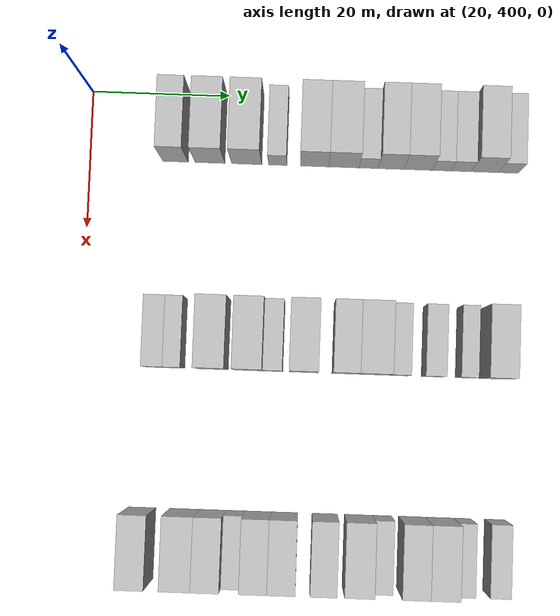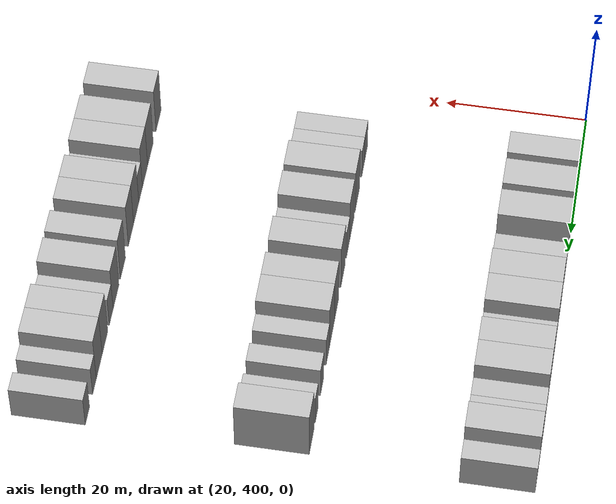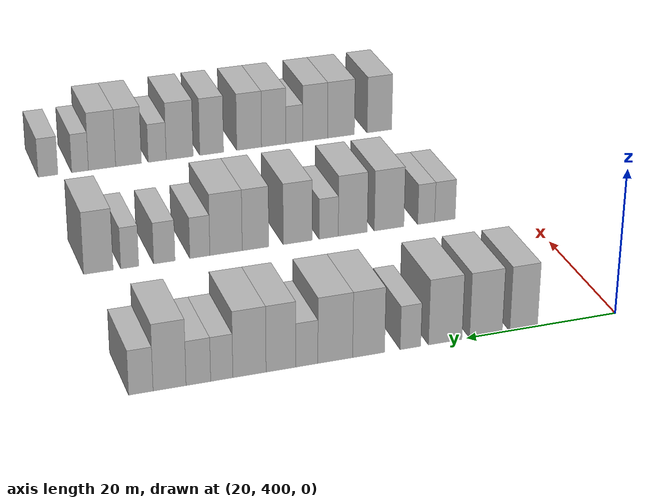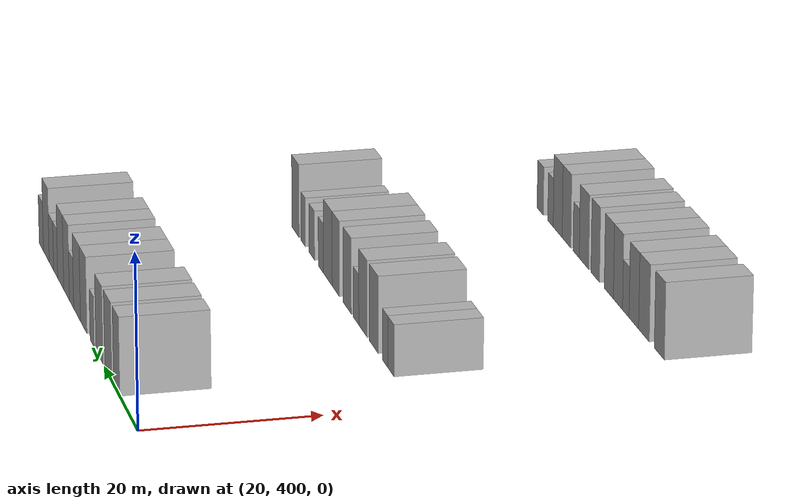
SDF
<sdf version="1.6">
 <world name="default">
  <model name="building_210">
   <static>1</static>
   <pose>25.0000 412.4934 0 0.000000 0.000000 0.000000</pose>
   <link name="link">
    <pose>0 0 4.50 0 0 0</pose>
    <collision name="collision"><geometry><box><size>10.0000 3.6912 9.0000</size></box></geometry></collision>
    <visual name="visual">
     <cast_shadows>0</cast_shadows>
     <geometry><box><size>10.0000 3.6912 9.0000</size></box></geometry>
     <material>
      <script>
       <uri>model://HANNAS_wall/materials/scripts</uri>
       <uri>model://HANNAS_wall/materials/textures</uri>
       <name>vrc/HANNAS_wall</name>
      </script>
     </material>
    </visual>
   </link>
  </model>
  <model name="building_211">
   <static>1</static>
   <pose>25.0000 417.4987 0 0.000000 0.000000 0.000000</pose>
   <link name="link">
    <pose>0 0 4.50 0 0 0</pose>
    <collision name="collision"><geometry><box><size>10.0000 4.3194 9.0000</size></box></geometry></collision>
    <visual name="visual">
     <cast_shadows>0</cast_shadows>
     <geometry><box><size>10.0000 4.3194 9.0000</size></box></geometry>
     <material>
      <script>
       <uri>model://HANNAS_wall/materials/scripts</uri>
       <uri>model://HANNAS_wall/materials/textures</uri>
       <name>vrc/HANNAS_wall</name>
      </script>
     </material>
    </visual>
   </link>
  </model>
  <model name="building_212">
   <static>1</static>
   <pose>25.0000 422.8461 0 0.000000 0.000000 0.000000</pose>
   <link name="link">
    <pose>0 0 4.50 0 0 0</pose>
    <collision name="collision"><geometry><box><size>10.0000 4.3755 9.0000</size></box></geometry></collision>
    <visual name="visual">
     <cast_shadows>0</cast_shadows>
     <geometry><box><size>10.0000 4.3755 9.0000</size></box></geometry>
     <material>
      <script>
       <uri>model://HANNAS_wall/materials/scripts</uri>
       <uri>model://HANNAS_wall/materials/textures</uri>
       <name>vrc/HANNAS_wall</name>
      </script>
     </material>
    </visual>
   </link>
  </model>
  <model name="building_213">
   <static>1</static>
   <pose>25.0000 427.3644 0 0.000000 0.000000 0.000000</pose>
   <link name="link">
    <pose>0 0 3.00 0 0 0</pose>
    <collision name="collision"><geometry><box><size>10.0000 2.6610 6.0000</size></box></geometry></collision>
    <visual name="visual">
     <cast_shadows>0</cast_shadows>
     <geometry><box><size>10.0000 2.6610 6.0000</size></box></geometry>
     <material>
      <script>
       <uri>model://HANNAS_wall/materials/scripts</uri>
       <uri>model://HANNAS_wall/materials/textures</uri>
       <name>vrc/HANNAS_wall</name>
      </script>
     </material>
    </visual>
   </link>
  </model>
  <model name="building_214">
   <static>1</static>
   <pose>25.0000 432.7341 0 0.000000 0.000000 0.000000</pose>
   <link name="link">
    <pose>0 0 4.50 0 0 0</pose>
    <collision name="collision"><geometry><box><size>10.0000 4.0784 9.0000</size></box></geometry></collision>
    <visual name="visual">
     <cast_shadows>0</cast_shadows>
     <geometry><box><size>10.0000 4.0784 9.0000</size></box></geometry>
     <material>
      <script>
       <uri>model://HANNAS_wall/materials/scripts</uri>
       <uri>model://HANNAS_wall/materials/textures</uri>
       <name>vrc/HANNAS_wall</name>
      </script>
     </material>
    </visual>
   </link>
  </model>
  <model name="building_215">
   <static>1</static>
   <pose>25.0000 436.9752 0 0.000000 0.000000 0.000000</pose>
   <link name="link">
    <pose>0 0 4.50 0 0 0</pose>
    <collision name="collision"><geometry><box><size>10.0000 4.4038 9.0000</size></box></geometry></collision>
    <visual name="visual">
     <cast_shadows>0</cast_shadows>
     <geometry><box><size>10.0000 4.4038 9.0000</size></box></geometry>
     <material>
      <script>
       <uri>model://HANNAS_wall/materials/scripts</uri>
       <uri>model://HANNAS_wall/materials/textures</uri>
       <name>vrc/HANNAS_wall</name>
      </script>
     </material>
    </visual>
   </link>
  </model>
  <model name="building_216">
   <static>1</static>
   <pose>25.0000 440.5549 0 0.000000 0.000000 0.000000</pose>
   <link name="link">
    <pose>0 0 3.00 0 0 0</pose>
    <collision name="collision"><geometry><box><size>10.0000 2.7556 6.0000</size></box></geometry></collision>
    <visual name="visual">
     <cast_shadows>0</cast_shadows>
     <geometry><box><size>10.0000 2.7556 6.0000</size></box></geometry>
     <material>
      <script>
       <uri>model://HANNAS_wall/materials/scripts</uri>
       <uri>model://HANNAS_wall/materials/textures</uri>
       <name>vrc/HANNAS_wall</name>
      </script>
     </material>
    </visual>
   </link>
  </model>
  <model name="building_217">
   <static>1</static>
   <pose>25.0000 443.7847 0 0.000000 0.000000 0.000000</pose>
   <link name="link">
    <pose>0 0 4.50 0 0 0</pose>
    <collision name="collision"><geometry><box><size>10.0000 3.7041 9.0000</size></box></geometry></collision>
    <visual name="visual">
     <cast_shadows>0</cast_shadows>
     <geometry><box><size>10.0000 3.7041 9.0000</size></box></geometry>
     <material>
      <script>
       <uri>model://HANNAS_wall/materials/scripts</uri>
       <uri>model://HANNAS_wall/materials/textures</uri>
       <name>vrc/HANNAS_wall</name>
      </script>
     </material>
    </visual>
   </link>
  </model>
  <model name="building_218">
   <static>1</static>
   <pose>25.0000 447.6839 0 0.000000 0.000000 0.000000</pose>
   <link name="link">
    <pose>0 0 4.50 0 0 0</pose>
    <collision name="collision"><geometry><box><size>10.0000 4.0942 9.0000</size></box></geometry></collision>
    <visual name="visual">
     <cast_shadows>0</cast_shadows>
     <geometry><box><size>10.0000 4.0942 9.0000</size></box></geometry>
     <material>
      <script>
       <uri>model://HANNAS_wall/materials/scripts</uri>
       <uri>model://HANNAS_wall/materials/textures</uri>
       <name>vrc/HANNAS_wall</name>
      </script>
     </material>
    </visual>
   </link>
  </model>
  <model name="building_219">
   <static>1</static>
   <pose>25.0000 451.0873 0 0.000000 0.000000 0.000000</pose>
   <link name="link">
    <pose>0 0 3.00 0 0 0</pose>
    <collision name="collision"><geometry><box><size>10.0000 2.7126 6.0000</size></box></geometry></collision>
    <visual name="visual">
     <cast_shadows>0</cast_shadows>
     <geometry><box><size>10.0000 2.7126 6.0000</size></box></geometry>
     <material>
      <script>
       <uri>model://HANNAS_wall/materials/scripts</uri>
       <uri>model://HANNAS_wall/materials/textures</uri>
       <name>vrc/HANNAS_wall</name>
      </script>
     </material>
    </visual>
   </link>
  </model>
  <model name="building_220">
   <static>1</static>
   <pose>25.0000 453.9395 0 0.000000 0.000000 0.000000</pose>
   <link name="link">
    <pose>0 0 3.00 0 0 0</pose>
    <collision name="collision"><geometry><box><size>10.0000 2.9918 6.0000</size></box></geometry></collision>
    <visual name="visual">
     <cast_shadows>0</cast_shadows>
     <geometry><box><size>10.0000 2.9918 6.0000</size></box></geometry>
     <material>
      <script>
       <uri>model://HANNAS_wall/materials/scripts</uri>
       <uri>model://HANNAS_wall/materials/textures</uri>
       <name>vrc/HANNAS_wall</name>
      </script>
     </material>
    </visual>
   </link>
  </model>
  <model name="building_221">
   <static>1</static>
   <pose>25.0000 457.4215 0 0.000000 0.000000 0.000000</pose>
   <link name="link">
    <pose>0 0 4.50 0 0 0</pose>
    <collision name="collision"><geometry><box><size>10.0000 3.9722 9.0000</size></box></geometry></collision>
    <visual name="visual">
     <cast_shadows>0</cast_shadows>
     <geometry><box><size>10.0000 3.9722 9.0000</size></box></geometry>
     <material>
      <script>
       <uri>model://HANNAS_wall/materials/scripts</uri>
       <uri>model://HANNAS_wall/materials/textures</uri>
       <name>vrc/HANNAS_wall</name>
      </script>
     </material>
    </visual>
   </link>
  </model>
  <model name="building_222">
   <static>1</static>
   <pose>25.0000 460.8746 0 0.000000 0.000000 0.000000</pose>
   <link name="link">
    <pose>0 0 3.00 0 0 0</pose>
    <collision name="collision"><geometry><box><size>10.0000 2.9340 6.0000</size></box></geometry></collision>
    <visual name="visual">
     <cast_shadows>0</cast_shadows>
     <geometry><box><size>10.0000 2.9340 6.0000</size></box></geometry>
     <material>
      <script>
       <uri>model://HANNAS_wall/materials/scripts</uri>
       <uri>model://HANNAS_wall/materials/textures</uri>
       <name>vrc/HANNAS_wall</name>
      </script>
     </material>
    </visual>
   </link>
  </model>
  <model name="building_426">
   <static>1</static>
   <pose>55.0000 411.0749 0 0.000000 0.000000 0.000000</pose>
   <link name="link">
    <pose>0 0 3.00 0 0 0</pose>
    <collision name="collision"><geometry><box><size>10.0000 2.9885 6.0000</size></box></geometry></collision>
    <visual name="visual">
     <cast_shadows>0</cast_shadows>
     <geometry><box><size>10.0000 2.9885 6.0000</size></box></geometry>
     <material>
      <script>
       <uri>model://HANNAS_wall/materials/scripts</uri>
       <uri>model://HANNAS_wall/materials/textures</uri>
       <name>vrc/HANNAS_wall</name>
      </script>
     </material>
    </visual>
   </link>
  </model>
  <model name="building_427">
   <static>1</static>
   <pose>55.0000 413.8085 0 0.000000 0.000000 0.000000</pose>
   <link name="link">
    <pose>0 0 3.00 0 0 0</pose>
    <collision name="collision"><geometry><box><size>10.0000 2.4786 6.0000</size></box></geometry></collision>
    <visual name="visual">
     <cast_shadows>0</cast_shadows>
     <geometry><box><size>10.0000 2.4786 6.0000</size></box></geometry>
     <material>
      <script>
       <uri>model://HANNAS_wall/materials/scripts</uri>
       <uri>model://HANNAS_wall/materials/textures</uri>
       <name>vrc/HANNAS_wall</name>
      </script>
     </material>
    </visual>
   </link>
  </model>
  <model name="building_428">
   <static>1</static>
   <pose>55.0000 419.1791 0 0.000000 0.000000 0.000000</pose>
   <link name="link">
    <pose>0 0 4.50 0 0 0</pose>
    <collision name="collision"><geometry><box><size>10.0000 4.2628 9.0000</size></box></geometry></collision>
    <visual name="visual">
     <cast_shadows>0</cast_shadows>
     <geometry><box><size>10.0000 4.2628 9.0000</size></box></geometry>
     <material>
      <script>
       <uri>model://HANNAS_wall/materials/scripts</uri>
       <uri>model://HANNAS_wall/materials/textures</uri>
       <name>vrc/HANNAS_wall</name>
      </script>
     </material>
    </visual>
   </link>
  </model>
  <model name="building_429">
   <static>1</static>
   <pose>55.0000 424.3773 0 0.000000 0.000000 0.000000</pose>
   <link name="link">
    <pose>0 0 4.50 0 0 0</pose>
    <collision name="collision"><geometry><box><size>10.0000 4.1335 9.0000</size></box></geometry></collision>
    <visual name="visual">
     <cast_shadows>0</cast_shadows>
     <geometry><box><size>10.0000 4.1335 9.0000</size></box></geometry>
     <material>
      <script>
       <uri>model://HANNAS_wall/materials/scripts</uri>
       <uri>model://HANNAS_wall/materials/textures</uri>
       <name>vrc/HANNAS_wall</name>
      </script>
     </material>
    </visual>
   </link>
  </model>
  <model name="building_430">
   <static>1</static>
   <pose>55.0000 427.7989 0 0.000000 0.000000 0.000000</pose>
   <link name="link">
    <pose>0 0 3.00 0 0 0</pose>
    <collision name="collision"><geometry><box><size>10.0000 2.7099 6.0000</size></box></geometry></collision>
    <visual name="visual">
     <cast_shadows>0</cast_shadows>
     <geometry><box><size>10.0000 2.7099 6.0000</size></box></geometry>
     <material>
      <script>
       <uri>model://HANNAS_wall/materials/scripts</uri>
       <uri>model://HANNAS_wall/materials/textures</uri>
       <name>vrc/HANNAS_wall</name>
      </script>
     </material>
    </visual>
   </link>
  </model>
  <model name="building_431">
   <static>1</static>
   <pose>55.0000 432.1767 0 0.000000 0.000000 0.000000</pose>
   <link name="link">
    <pose>0 0 4.50 0 0 0</pose>
    <collision name="collision"><geometry><box><size>10.0000 4.0457 9.0000</size></box></geometry></collision>
    <visual name="visual">
     <cast_shadows>0</cast_shadows>
     <geometry><box><size>10.0000 4.0457 9.0000</size></box></geometry>
     <material>
      <script>
       <uri>model://HANNAS_wall/materials/scripts</uri>
       <uri>model://HANNAS_wall/materials/textures</uri>
       <name>vrc/HANNAS_wall</name>
      </script>
     </material>
    </visual>
   </link>
  </model>
  <model name="building_432">
   <static>1</static>
   <pose>55.0000 438.0359 0 0.000000 0.000000 0.000000</pose>
   <link name="link">
    <pose>0 0 4.50 0 0 0</pose>
    <collision name="collision"><geometry><box><size>10.0000 3.6726 9.0000</size></box></geometry></collision>
    <visual name="visual">
     <cast_shadows>0</cast_shadows>
     <geometry><box><size>10.0000 3.6726 9.0000</size></box></geometry>
     <material>
      <script>
       <uri>model://HANNAS_wall/materials/scripts</uri>
       <uri>model://HANNAS_wall/materials/textures</uri>
       <name>vrc/HANNAS_wall</name>
      </script>
     </material>
    </visual>
   </link>
  </model>
  <model name="building_433">
   <static>1</static>
   <pose>55.0000 442.0909 0 0.000000 0.000000 0.000000</pose>
   <link name="link">
    <pose>0 0 4.50 0 0 0</pose>
    <collision name="collision"><geometry><box><size>10.0000 4.4375 9.0000</size></box></geometry></collision>
    <visual name="visual">
     <cast_shadows>0</cast_shadows>
     <geometry><box><size>10.0000 4.4375 9.0000</size></box></geometry>
     <material>
      <script>
       <uri>model://HANNAS_wall/materials/scripts</uri>
       <uri>model://HANNAS_wall/materials/textures</uri>
       <name>vrc/HANNAS_wall</name>
      </script>
     </material>
    </visual>
   </link>
  </model>
  <model name="building_434">
   <static>1</static>
   <pose>55.0000 445.6775 0 0.000000 0.000000 0.000000</pose>
   <link name="link">
    <pose>0 0 3.00 0 0 0</pose>
    <collision name="collision"><geometry><box><size>10.0000 2.7356 6.0000</size></box></geometry></collision>
    <visual name="visual">
     <cast_shadows>0</cast_shadows>
     <geometry><box><size>10.0000 2.7356 6.0000</size></box></geometry>
     <material>
      <script>
       <uri>model://HANNAS_wall/materials/scripts</uri>
       <uri>model://HANNAS_wall/materials/textures</uri>
       <name>vrc/HANNAS_wall</name>
      </script>
     </material>
    </visual>
   </link>
  </model>
  <model name="building_435">
   <static>1</static>
   <pose>55.0000 450.4923 0 0.000000 0.000000 0.000000</pose>
   <link name="link">
    <pose>0 0 3.00 0 0 0</pose>
    <collision name="collision"><geometry><box><size>10.0000 2.8940 6.0000</size></box></geometry></collision>
    <visual name="visual">
     <cast_shadows>0</cast_shadows>
     <geometry><box><size>10.0000 2.8940 6.0000</size></box></geometry>
     <material>
      <script>
       <uri>model://HANNAS_wall/materials/scripts</uri>
       <uri>model://HANNAS_wall/materials/textures</uri>
       <name>vrc/HANNAS_wall</name>
      </script>
     </material>
    </visual>
   </link>
  </model>
  <model name="building_436">
   <static>1</static>
   <pose>55.0000 455.1427 0 0.000000 0.000000 0.000000</pose>
   <link name="link">
    <pose>0 0 3.00 0 0 0</pose>
    <collision name="collision"><geometry><box><size>10.0000 2.4068 6.0000</size></box></geometry></collision>
    <visual name="visual">
     <cast_shadows>0</cast_shadows>
     <geometry><box><size>10.0000 2.4068 6.0000</size></box></geometry>
     <material>
      <script>
       <uri>model://HANNAS_wall/materials/scripts</uri>
       <uri>model://HANNAS_wall/materials/textures</uri>
       <name>vrc/HANNAS_wall</name>
      </script>
     </material>
    </visual>
   </link>
  </model>
  <model name="building_437">
   <static>1</static>
   <pose>55.0000 459.3042 0 0.000000 0.000000 0.000000</pose>
   <link name="link">
    <pose>0 0 4.50 0 0 0</pose>
    <collision name="collision"><geometry><box><size>10.0000 3.9161 9.0000</size></box></geometry></collision>
    <visual name="visual">
     <cast_shadows>0</cast_shadows>
     <geometry><box><size>10.0000 3.9161 9.0000</size></box></geometry>
     <material>
      <script>
       <uri>model://HANNAS_wall/materials/scripts</uri>
       <uri>model://HANNAS_wall/materials/textures</uri>
       <name>vrc/HANNAS_wall</name>
      </script>
     </material>
    </visual>
   </link>
  </model>
  <model name="building_657">
   <static>1</static>
   <pose>85.0000 409.7900 0 0.000000 0.000000 0.000000</pose>
   <link name="link">
    <pose>0 0 4.50 0 0 0</pose>
    <collision name="collision"><geometry><box><size>10.0000 3.9113 9.0000</size></box></geometry></collision>
    <visual name="visual">
     <cast_shadows>0</cast_shadows>
     <geometry><box><size>10.0000 3.9113 9.0000</size></box></geometry>
     <material>
      <script>
       <uri>model://HANNAS_wall/materials/scripts</uri>
       <uri>model://HANNAS_wall/materials/textures</uri>
       <name>vrc/HANNAS_wall</name>
      </script>
     </material>
    </visual>
   </link>
  </model>
  <model name="building_658">
   <static>1</static>
   <pose>85.0000 415.8595 0 0.000000 0.000000 0.000000</pose>
   <link name="link">
    <pose>0 0 4.50 0 0 0</pose>
    <collision name="collision"><geometry><box><size>10.0000 4.2278 9.0000</size></box></geometry></collision>
    <visual name="visual">
     <cast_shadows>0</cast_shadows>
     <geometry><box><size>10.0000 4.2278 9.0000</size></box></geometry>
     <material>
      <script>
       <uri>model://HANNAS_wall/materials/scripts</uri>
       <uri>model://HANNAS_wall/materials/textures</uri>
       <name>vrc/HANNAS_wall</name>
      </script>
     </material>
    </visual>
   </link>
  </model>
  <model name="building_659">
   <static>1</static>
   <pose>85.0000 419.8991 0 0.000000 0.000000 0.000000</pose>
   <link name="link">
    <pose>0 0 4.50 0 0 0</pose>
    <collision name="collision"><geometry><box><size>10.0000 3.8513 9.0000</size></box></geometry></collision>
    <visual name="visual">
     <cast_shadows>0</cast_shadows>
     <geometry><box><size>10.0000 3.8513 9.0000</size></box></geometry>
     <material>
      <script>
       <uri>model://HANNAS_wall/materials/scripts</uri>
       <uri>model://HANNAS_wall/materials/textures</uri>
       <name>vrc/HANNAS_wall</name>
      </script>
     </material>
    </visual>
   </link>
  </model>
  <model name="building_660">
   <static>1</static>
   <pose>85.0000 423.1378 0 0.000000 0.000000 0.000000</pose>
   <link name="link">
    <pose>0 0 3.00 0 0 0</pose>
    <collision name="collision"><geometry><box><size>10.0000 2.6262 6.0000</size></box></geometry></collision>
    <visual name="visual">
     <cast_shadows>0</cast_shadows>
     <geometry><box><size>10.0000 2.6262 6.0000</size></box></geometry>
     <material>
      <script>
       <uri>model://HANNAS_wall/materials/scripts</uri>
       <uri>model://HANNAS_wall/materials/textures</uri>
       <name>vrc/HANNAS_wall</name>
      </script>
     </material>
    </visual>
   </link>
  </model>
  <model name="building_661">
   <static>1</static>
   <pose>85.0000 426.3318 0 0.000000 0.000000 0.000000</pose>
   <link name="link">
    <pose>0 0 4.50 0 0 0</pose>
    <collision name="collision"><geometry><box><size>10.0000 3.7617 9.0000</size></box></geometry></collision>
    <visual name="visual">
     <cast_shadows>0</cast_shadows>
     <geometry><box><size>10.0000 3.7617 9.0000</size></box></geometry>
     <material>
      <script>
       <uri>model://HANNAS_wall/materials/scripts</uri>
       <uri>model://HANNAS_wall/materials/textures</uri>
       <name>vrc/HANNAS_wall</name>
      </script>
     </material>
    </visual>
   </link>
  </model>
  <model name="building_662">
   <static>1</static>
   <pose>85.0000 430.1103 0 0.000000 0.000000 0.000000</pose>
   <link name="link">
    <pose>0 0 4.50 0 0 0</pose>
    <collision name="collision"><geometry><box><size>10.0000 3.7953 9.0000</size></box></geometry></collision>
    <visual name="visual">
     <cast_shadows>0</cast_shadows>
     <geometry><box><size>10.0000 3.7953 9.0000</size></box></geometry>
     <material>
      <script>
       <uri>model://HANNAS_wall/materials/scripts</uri>
       <uri>model://HANNAS_wall/materials/textures</uri>
       <name>vrc/HANNAS_wall</name>
      </script>
     </material>
    </visual>
   </link>
  </model>
  <model name="building_663">
   <static>1</static>
   <pose>85.0000 435.8104 0 0.000000 0.000000 0.000000</pose>
   <link name="link">
    <pose>0 0 4.50 0 0 0</pose>
    <collision name="collision"><geometry><box><size>10.0000 3.6050 9.0000</size></box></geometry></collision>
    <visual name="visual">
     <cast_shadows>0</cast_shadows>
     <geometry><box><size>10.0000 3.6050 9.0000</size></box></geometry>
     <material>
      <script>
       <uri>model://HANNAS_wall/materials/scripts</uri>
       <uri>model://HANNAS_wall/materials/textures</uri>
       <name>vrc/HANNAS_wall</name>
      </script>
     </material>
    </visual>
   </link>
  </model>
  <model name="building_664">
   <static>1</static>
   <pose>85.0000 440.6339 0 0.000000 0.000000 0.000000</pose>
   <link name="link">
    <pose>0 0 4.50 0 0 0</pose>
    <collision name="collision"><geometry><box><size>10.0000 4.0421 9.0000</size></box></geometry></collision>
    <visual name="visual">
     <cast_shadows>0</cast_shadows>
     <geometry><box><size>10.0000 4.0421 9.0000</size></box></geometry>
     <material>
      <script>
       <uri>model://HANNAS_wall/materials/scripts</uri>
       <uri>model://HANNAS_wall/materials/textures</uri>
       <name>vrc/HANNAS_wall</name>
      </script>
     </material>
    </visual>
   </link>
  </model>
  <model name="building_665">
   <static>1</static>
   <pose>85.0000 443.9970 0 0.000000 0.000000 0.000000</pose>
   <link name="link">
    <pose>0 0 3.00 0 0 0</pose>
    <collision name="collision"><geometry><box><size>10.0000 2.6841 6.0000</size></box></geometry></collision>
    <visual name="visual">
     <cast_shadows>0</cast_shadows>
     <geometry><box><size>10.0000 2.6841 6.0000</size></box></geometry>
     <material>
      <script>
       <uri>model://HANNAS_wall/materials/scripts</uri>
       <uri>model://HANNAS_wall/materials/textures</uri>
       <name>vrc/HANNAS_wall</name>
      </script>
     </material>
    </visual>
   </link>
  </model>
  <model name="building_666">
   <static>1</static>
   <pose>85.0000 448.2466 0 0.000000 0.000000 0.000000</pose>
   <link name="link">
    <pose>0 0 4.50 0 0 0</pose>
    <collision name="collision"><geometry><box><size>10.0000 3.8151 9.0000</size></box></geometry></collision>
    <visual name="visual">
     <cast_shadows>0</cast_shadows>
     <geometry><box><size>10.0000 3.8151 9.0000</size></box></geometry>
     <material>
      <script>
       <uri>model://HANNAS_wall/materials/scripts</uri>
       <uri>model://HANNAS_wall/materials/textures</uri>
       <name>vrc/HANNAS_wall</name>
      </script>
     </material>
    </visual>
   </link>
  </model>
  <model name="building_667">
   <static>1</static>
   <pose>85.0000 452.1522 0 0.000000 0.000000 0.000000</pose>
   <link name="link">
    <pose>0 0 4.50 0 0 0</pose>
    <collision name="collision"><geometry><box><size>10.0000 3.9960 9.0000</size></box></geometry></collision>
    <visual name="visual">
     <cast_shadows>0</cast_shadows>
     <geometry><box><size>10.0000 3.9960 9.0000</size></box></geometry>
     <material>
      <script>
       <uri>model://HANNAS_wall/materials/scripts</uri>
       <uri>model://HANNAS_wall/materials/textures</uri>
       <name>vrc/HANNAS_wall</name>
      </script>
     </material>
    </visual>
   </link>
  </model>
  <model name="building_668">
   <static>1</static>
   <pose>85.0000 455.3749 0 0.000000 0.000000 0.000000</pose>
   <link name="link">
    <pose>0 0 3.00 0 0 0</pose>
    <collision name="collision"><geometry><box><size>10.0000 2.4495 6.0000</size></box></geometry></collision>
    <visual name="visual">
     <cast_shadows>0</cast_shadows>
     <geometry><box><size>10.0000 2.4495 6.0000</size></box></geometry>
     <material>
      <script>
       <uri>model://HANNAS_wall/materials/scripts</uri>
       <uri>model://HANNAS_wall/materials/textures</uri>
       <name>vrc/HANNAS_wall</name>
      </script>
     </material>
    </visual>
   </link>
  </model>
  <model name="building_669">
   <static>1</static>
   <pose>85.0000 460.0323 0 0.000000 0.000000 0.000000</pose>
   <link name="link">
    <pose>0 0 3.00 0 0 0</pose>
    <collision name="collision"><geometry><box><size>10.0000 2.8653 6.0000</size></box></geometry></collision>
    <visual name="visual">
     <cast_shadows>0</cast_shadows>
     <geometry><box><size>10.0000 2.8653 6.0000</size></box></geometry>
     <material>
      <script>
       <uri>model://HANNAS_wall/materials/scripts</uri>
       <uri>model://HANNAS_wall/materials/textures</uri>
       <name>vrc/HANNAS_wall</name>
      </script>
     </material>
    </visual>
   </link>
  </model>
 </world>
</sdf>
